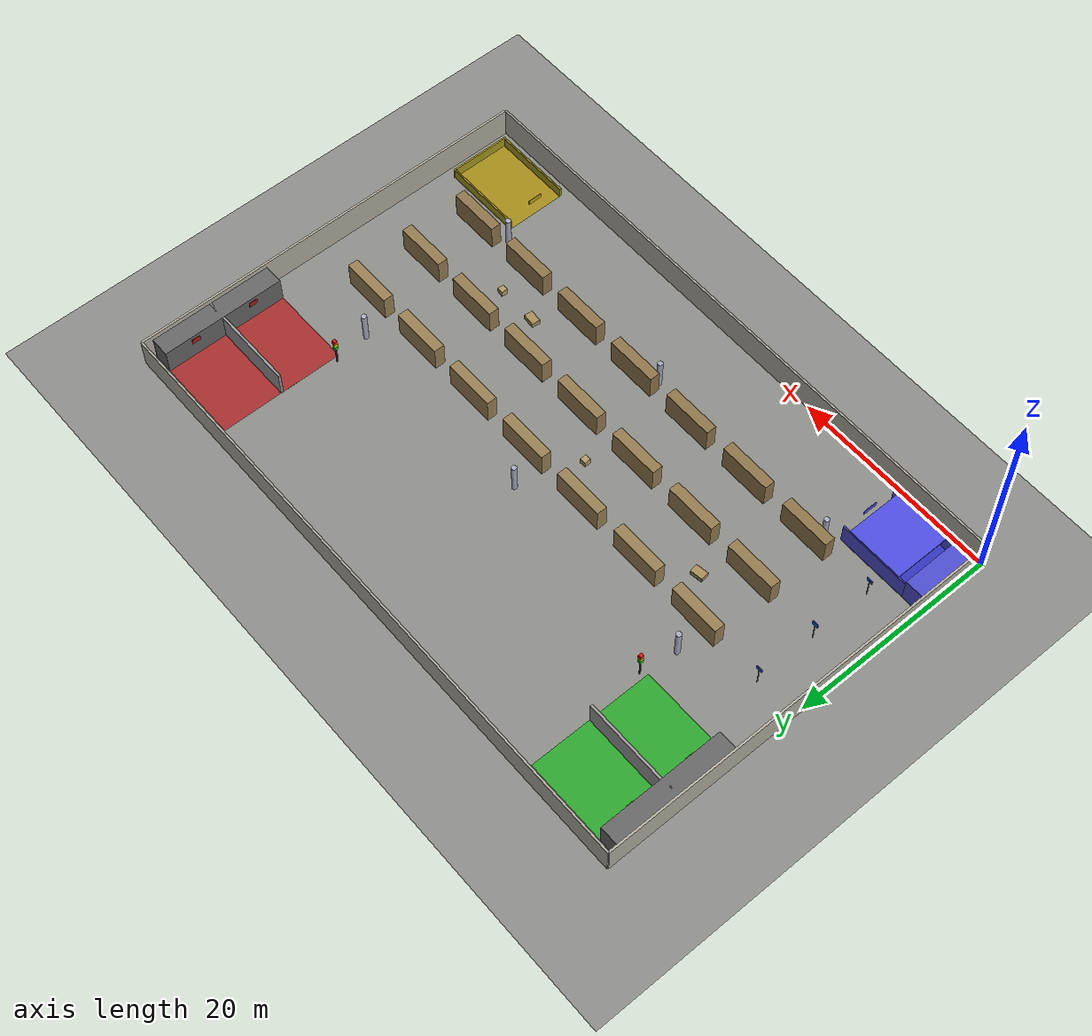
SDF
<sdf version="1.8">
 <world name="warehouse">
  <plugin filename="ignition-gazebo-physics-system" name="ignition::gazebo::systems::Physics"/>
  <plugin filename="ignition-gazebo-sensors-system" name="ignition::gazebo::systems::Sensors">
   <render_engine>ogre2</render_engine>
  </plugin>
  <plugin filename="ignition-gazebo-imu-system" name="ignition::gazebo::systems::Imu"/>
  <plugin filename="ignition-gazebo-user-commands-system" name="ignition::gazebo::systems::UserCommands"/>
  <plugin filename="ignition-gazebo-scene-broadcaster-system" name="ignition::gazebo::systems::SceneBroadcaster"/>
  <physics type="ode">
   <max_step_size>0.004</max_step_size>
   <real_time_factor>1.0</real_time_factor>
   <real_time_update_rate>250</real_time_update_rate>
  </physics>
  <light type="directional" name="sun_main">
   <pose>30 20 15 0 0 0</pose>
   <diffuse>0.9 0.9 0.85 1</diffuse>
   <specular>0.3 0.3 0.3 1</specular>
   <direction>-0.3 -0.2 -1.0</direction>
  </light>
  <light type="directional" name="sun_fill">
   <cast_shadows>false</cast_shadows>
   <pose>30 20 15 0 0 0</pose>
   <diffuse>0.35 0.35 0.4 1</diffuse>
   <specular>0.05 0.05 0.05 1</specular>
   <direction>0.3 0.2 -1.0</direction>
  </light>
  <light type="point" name="ceil_nw">
   <pose>15 32 8 0 0 0</pose>
   <diffuse>0.7 0.7 0.65 1</diffuse>
   <specular>0.1 0.1 0.1 1</specular>
   <attenuation>
    <range>24</range>
    <constant>0.3</constant>
    <linear>0.04</linear>
    <quadratic>0.008</quadratic>
   </attenuation>
   <cast_shadows>false</cast_shadows>
  </light>
  <light type="point" name="ceil_ne">
   <pose>45 32 8 0 0 0</pose>
   <diffuse>0.7 0.7 0.65 1</diffuse>
   <specular>0.1 0.1 0.1 1</specular>
   <attenuation>
    <range>24</range>
    <constant>0.3</constant>
    <linear>0.04</linear>
    <quadratic>0.008</quadratic>
   </attenuation>
   <cast_shadows>false</cast_shadows>
  </light>
  <light type="point" name="ceil_sw">
   <pose>15 12 8 0 0 0</pose>
   <diffuse>0.7 0.7 0.65 1</diffuse>
   <specular>0.1 0.1 0.1 1</specular>
   <attenuation>
    <range>24</range>
    <constant>0.3</constant>
    <linear>0.04</linear>
    <quadratic>0.008</quadratic>
   </attenuation>
   <cast_shadows>false</cast_shadows>
  </light>
  <light type="point" name="ceil_se">
   <pose>45 12 8 0 0 0</pose>
   <diffuse>0.7 0.7 0.65 1</diffuse>
   <specular>0.1 0.1 0.1 1</specular>
   <attenuation>
    <range>24</range>
    <constant>0.3</constant>
    <linear>0.04</linear>
    <quadratic>0.008</quadratic>
   </attenuation>
   <cast_shadows>false</cast_shadows>
  </light>
  <model name="ground_plane">
   <static>true</static>
   <link name="link">
    <collision name="c">
     <geometry><plane><normal>0 0 1</normal><size>80 60</size></plane></geometry>
     <surface>
      <friction>
       <ode><mu>0.6</mu><mu2>0.5</mu2><slip1>0.003</slip1><slip2>0.003</slip2><fdir1>1 0 0</fdir1></ode>
      </friction>
      <contact><ode><kp>1e6</kp><kd>100.0</kd><max_vel>0.1</max_vel><min_depth>0.001</min_depth></ode></contact>
     </surface>
    </collision>
    <visual name="v">
     <geometry><plane><normal>0 0 1</normal><size>80 60</size></plane></geometry>
     <material><ambient>0.55 0.55 0.53 1</ambient><diffuse>0.55 0.55 0.53 1</diffuse></material>
    </visual>
   </link>
  </model>
  <model name="wall_south">
   <static>true</static>
   <pose>30 0 1.5 0 0 0</pose>
   <link name="link">
    <collision name="c"><geometry><box><size>60 0.2 3.0</size></box></geometry></collision>
    <visual name="v">
     <geometry><box><size>60 0.2 3.0</size></box></geometry>
     <material><ambient>0.70 0.68 0.63 1</ambient><diffuse>0.70 0.68 0.63 1</diffuse></material>
    </visual>
   </link>
  </model>
  <model name="wall_north">
   <static>true</static>
   <pose>30 40 1.5 0 0 0</pose>
   <link name="link">
    <collision name="c"><geometry><box><size>60 0.2 3.0</size></box></geometry></collision>
    <visual name="v">
     <geometry><box><size>60 0.2 3.0</size></box></geometry>
     <material><ambient>0.70 0.68 0.63 1</ambient><diffuse>0.70 0.68 0.63 1</diffuse></material>
    </visual>
   </link>
  </model>
  <model name="wall_west">
   <static>true</static>
   <pose>0 20 1.5 0 0 0</pose>
   <link name="link">
    <collision name="c"><geometry><box><size>0.2 40 3.0</size></box></geometry></collision>
    <visual name="v">
     <geometry><box><size>0.2 40 3.0</size></box></geometry>
     <material><ambient>0.70 0.68 0.63 1</ambient><diffuse>0.70 0.68 0.63 1</diffuse></material>
    </visual>
   </link>
  </model>
  <model name="wall_east">
   <static>true</static>
   <pose>60 20 1.5 0 0 0</pose>
   <link name="link">
    <collision name="c"><geometry><box><size>0.2 40 3.0</size></box></geometry></collision>
    <visual name="v">
     <geometry><box><size>0.2 40 3.0</size></box></geometry>
     <material><ambient>0.70 0.68 0.63 1</ambient><diffuse>0.70 0.68 0.63 1</diffuse></material>
    </visual>
   </link>
  </model>
  <model name="col_s1">
   <static>true</static>
   <pose>10 8 1.5 0 0 0</pose>
   <link name="link">
    <collision name="c">
     <geometry><cylinder><radius>0.25</radius><length>3.0</length></cylinder></geometry>
    </collision>
    <visual name="v">
     <geometry><cylinder><radius>0.25</radius><length>3.0</length></cylinder></geometry>
     <material><ambient>0.60 0.62 0.70 1</ambient><diffuse>0.65 0.67 0.75 1</diffuse></material>
    </visual>
   </link>
  </model>
  <model name="col_s2">
   <static>true</static>
   <pose>30 8 1.5 0 0 0</pose>
   <link name="link">
    <collision name="c">
     <geometry><cylinder><radius>0.25</radius><length>3.0</length></cylinder></geometry>
    </collision>
    <visual name="v">
     <geometry><cylinder><radius>0.25</radius><length>3.0</length></cylinder></geometry>
     <material><ambient>0.60 0.62 0.70 1</ambient><diffuse>0.65 0.67 0.75 1</diffuse></material>
    </visual>
   </link>
  </model>
  <model name="col_s3">
   <static>true</static>
   <pose>50 8 1.5 0 0 0</pose>
   <link name="link">
    <collision name="c">
     <geometry><cylinder><radius>0.25</radius><length>3.0</length></cylinder></geometry>
    </collision>
    <visual name="v">
     <geometry><cylinder><radius>0.25</radius><length>3.0</length></cylinder></geometry>
     <material><ambient>0.60 0.62 0.70 1</ambient><diffuse>0.65 0.67 0.75 1</diffuse></material>
    </visual>
   </link>
  </model>
  <model name="col_n1">
   <static>true</static>
   <pose>10 24 1.5 0 0 0</pose>
   <link name="link">
    <collision name="c">
     <geometry><cylinder><radius>0.25</radius><length>3.0</length></cylinder></geometry>
    </collision>
    <visual name="v">
     <geometry><cylinder><radius>0.25</radius><length>3.0</length></cylinder></geometry>
     <material><ambient>0.60 0.62 0.70 1</ambient><diffuse>0.65 0.67 0.75 1</diffuse></material>
    </visual>
   </link>
  </model>
  <model name="col_n2">
   <static>true</static>
   <pose>30 24 1.5 0 0 0</pose>
   <link name="link">
    <collision name="c">
     <geometry><cylinder><radius>0.25</radius><length>3.0</length></cylinder></geometry>
    </collision>
    <visual name="v">
     <geometry><cylinder><radius>0.25</radius><length>3.0</length></cylinder></geometry>
     <material><ambient>0.60 0.62 0.70 1</ambient><diffuse>0.65 0.67 0.75 1</diffuse></material>
    </visual>
   </link>
  </model>
  <model name="col_n3">
   <static>true</static>
   <pose>50 24 1.5 0 0 0</pose>
   <link name="link">
    <collision name="c">
     <geometry><cylinder><radius>0.25</radius><length>3.0</length></cylinder></geometry>
    </collision>
    <visual name="v">
     <geometry><cylinder><radius>0.25</radius><length>3.0</length></cylinder></geometry>
     <material><ambient>0.60 0.62 0.70 1</ambient><diffuse>0.65 0.67 0.75 1</diffuse></material>
    </visual>
   </link>
  </model>
  <model name="loading_floor">
   <static>true</static>
   <pose>5 33 0.002 0 0 0</pose>
   <link name="link">
    <visual name="v">
     <geometry><box><size>10 12 0.002</size></box></geometry>
     <material><ambient>0.15 0.55 0.15 0.9</ambient><diffuse>0.18 0.65 0.18 0.9</diffuse></material>
    </visual>
   </link>
  </model>
  <model name="dock_west_backwall">
   <static>true</static>
   <pose>1.0 33 1.25 0 0 0</pose>
   <link name="link">
    <collision name="c"><geometry><box><size>2.0 12 2.5</size></box></geometry></collision>
    <visual name="v">
     <geometry><box><size>2.0 12 2.5</size></box></geometry>
     <material><ambient>0.35 0.35 0.35 1</ambient><diffuse>0.40 0.40 0.40 1</diffuse></material>
    </visual>
   </link>
  </model>
  <model name="dock_west_divider">
   <static>true</static>
   <pose>5 33 1.25 0 0 0</pose>
   <link name="link">
    <collision name="c"><geometry><box><size>10 0.25 2.5</size></box></geometry></collision>
    <visual name="v">
     <geometry><box><size>10 0.25 2.5</size></box></geometry>
     <material><ambient>0.55 0.55 0.55 1</ambient><diffuse>0.60 0.60 0.60 1</diffuse></material>
    </visual>
   </link>
  </model>
  <model name="sign_dock1">
   <static>true</static>
   <pose>2.1 36 2.0 0 0 0</pose>
   <link name="link">
    <collision name="c"><geometry><box><size>0.06 0.8 0.5</size></box></geometry></collision>
    <visual name="v">
     <geometry><box><size>0.06 0.8 0.5</size></box></geometry>
     <material><ambient>0.1 0.65 0.1 1</ambient><diffuse>0.1 0.75 0.1 1</diffuse></material>
    </visual>
   </link>
  </model>
  <model name="sign_dock2">
   <static>true</static>
   <pose>2.1 30 2.0 0 0 0</pose>
   <link name="link">
    <collision name="c"><geometry><box><size>0.06 0.8 0.5</size></box></geometry></collision>
    <visual name="v">
     <geometry><box><size>0.06 0.8 0.5</size></box></geometry>
     <material><ambient>0.1 0.55 0.1 1</ambient><diffuse>0.1 0.65 0.1 1</diffuse></material>
    </visual>
   </link>
  </model>
  <model name="unloading_floor">
   <static>true</static>
   <pose>55 33 0.002 0 0 0</pose>
   <link name="link">
    <visual name="v">
     <geometry><box><size>10 12 0.002</size></box></geometry>
     <material><ambient>0.55 0.15 0.15 0.9</ambient><diffuse>0.65 0.18 0.18 0.9</diffuse></material>
    </visual>
   </link>
  </model>
  <model name="dock_east_backwall">
   <static>true</static>
   <pose>59.0 33 1.25 0 0 0</pose>
   <link name="link">
    <collision name="c"><geometry><box><size>2.0 12 2.5</size></box></geometry></collision>
    <visual name="v">
     <geometry><box><size>2.0 12 2.5</size></box></geometry>
     <material><ambient>0.35 0.35 0.35 1</ambient><diffuse>0.40 0.40 0.40 1</diffuse></material>
    </visual>
   </link>
  </model>
  <model name="dock_east_divider">
   <static>true</static>
   <pose>55 33 1.25 0 0 0</pose>
   <link name="link">
    <collision name="c"><geometry><box><size>10 0.25 2.5</size></box></geometry></collision>
    <visual name="v">
     <geometry><box><size>10 0.25 2.5</size></box></geometry>
     <material><ambient>0.55 0.55 0.55 1</ambient><diffuse>0.60 0.60 0.60 1</diffuse></material>
    </visual>
   </link>
  </model>
  <model name="sign_dockA">
   <static>true</static>
   <pose>57.9 36 2.0 0 0 0</pose>
   <link name="link">
    <collision name="c"><geometry><box><size>0.06 0.8 0.5</size></box></geometry></collision>
    <visual name="v">
     <geometry><box><size>0.06 0.8 0.5</size></box></geometry>
     <material><ambient>0.65 0.1 0.1 1</ambient><diffuse>0.75 0.1 0.1 1</diffuse></material>
    </visual>
   </link>
  </model>
  <model name="sign_dockB">
   <static>true</static>
   <pose>57.9 30 2.0 0 0 0</pose>
   <link name="link">
    <collision name="c"><geometry><box><size>0.06 0.8 0.5</size></box></geometry></collision>
    <visual name="v">
     <geometry><box><size>0.06 0.8 0.5</size></box></geometry>
     <material><ambient>0.55 0.1 0.1 1</ambient><diffuse>0.65 0.1 0.1 1</diffuse></material>
    </visual>
   </link>
  </model>
  <model name="rack_A1">
   <static>true</static>
   <pose>11 21 1.25 0 0 0</pose>
   <link name="link">
    <collision name="c"><geometry><box><size>5.0 1.0 2.5</size></box></geometry></collision>
    <visual name="v">
     <geometry><box><size>5.0 1.0 2.5</size></box></geometry>
     <material><ambient>0.52 0.42 0.28 1</ambient><diffuse>0.60 0.50 0.33 1</diffuse></material>
    </visual>
   </link>
  </model>
  <model name="rack_A2">
   <static>true</static>
   <pose>18 21 1.25 0 0 0</pose>
   <link name="link">
    <collision name="c"><geometry><box><size>5.0 1.0 2.5</size></box></geometry></collision>
    <visual name="v">
     <geometry><box><size>5.0 1.0 2.5</size></box></geometry>
     <material><ambient>0.52 0.42 0.28 1</ambient><diffuse>0.60 0.50 0.33 1</diffuse></material>
    </visual>
   </link>
  </model>
  <model name="rack_A3">
   <static>true</static>
   <pose>25 21 1.25 0 0 0</pose>
   <link name="link">
    <collision name="c"><geometry><box><size>5.0 1.0 2.5</size></box></geometry></collision>
    <visual name="v">
     <geometry><box><size>5.0 1.0 2.5</size></box></geometry>
     <material><ambient>0.52 0.42 0.28 1</ambient><diffuse>0.60 0.50 0.33 1</diffuse></material>
    </visual>
   </link>
  </model>
  <model name="rack_A4">
   <static>true</static>
   <pose>32 21 1.25 0 0 0</pose>
   <link name="link">
    <collision name="c"><geometry><box><size>5.0 1.0 2.5</size></box></geometry></collision>
    <visual name="v">
     <geometry><box><size>5.0 1.0 2.5</size></box></geometry>
     <material><ambient>0.52 0.42 0.28 1</ambient><diffuse>0.60 0.50 0.33 1</diffuse></material>
    </visual>
   </link>
  </model>
  <model name="rack_A5">
   <static>true</static>
   <pose>39 21 1.25 0 0 0</pose>
   <link name="link">
    <collision name="c"><geometry><box><size>5.0 1.0 2.5</size></box></geometry></collision>
    <visual name="v">
     <geometry><box><size>5.0 1.0 2.5</size></box></geometry>
     <material><ambient>0.52 0.42 0.28 1</ambient><diffuse>0.60 0.50 0.33 1</diffuse></material>
    </visual>
   </link>
  </model>
  <model name="rack_A6">
   <static>true</static>
   <pose>46 21 1.25 0 0 0</pose>
   <link name="link">
    <collision name="c"><geometry><box><size>5.0 1.0 2.5</size></box></geometry></collision>
    <visual name="v">
     <geometry><box><size>5.0 1.0 2.5</size></box></geometry>
     <material><ambient>0.52 0.42 0.28 1</ambient><diffuse>0.60 0.50 0.33 1</diffuse></material>
    </visual>
   </link>
  </model>
  <model name="rack_A7">
   <static>true</static>
   <pose>53 21 1.25 0 0 0</pose>
   <link name="link">
    <collision name="c"><geometry><box><size>5.0 1.0 2.5</size></box></geometry></collision>
    <visual name="v">
     <geometry><box><size>5.0 1.0 2.5</size></box></geometry>
     <material><ambient>0.52 0.42 0.28 1</ambient><diffuse>0.60 0.50 0.33 1</diffuse></material>
    </visual>
   </link>
  </model>
  <model name="rack_B1">
   <static>true</static>
   <pose>11 15 1.25 0 0 0</pose>
   <link name="link">
    <collision name="c"><geometry><box><size>5.0 1.0 2.5</size></box></geometry></collision>
    <visual name="v">
     <geometry><box><size>5.0 1.0 2.5</size></box></geometry>
     <material><ambient>0.50 0.40 0.26 1</ambient><diffuse>0.58 0.48 0.31 1</diffuse></material>
    </visual>
   </link>
  </model>
  <model name="rack_B2">
   <static>true</static>
   <pose>18 15 1.25 0 0 0</pose>
   <link name="link">
    <collision name="c"><geometry><box><size>5.0 1.0 2.5</size></box></geometry></collision>
    <visual name="v">
     <geometry><box><size>5.0 1.0 2.5</size></box></geometry>
     <material><ambient>0.50 0.40 0.26 1</ambient><diffuse>0.58 0.48 0.31 1</diffuse></material>
    </visual>
   </link>
  </model>
  <model name="rack_B3">
   <static>true</static>
   <pose>25 15 1.25 0 0 0</pose>
   <link name="link">
    <collision name="c"><geometry><box><size>5.0 1.0 2.5</size></box></geometry></collision>
    <visual name="v">
     <geometry><box><size>5.0 1.0 2.5</size></box></geometry>
     <material><ambient>0.50 0.40 0.26 1</ambient><diffuse>0.58 0.48 0.31 1</diffuse></material>
    </visual>
   </link>
  </model>
  <model name="rack_B4">
   <static>true</static>
   <pose>32 15 1.25 0 0 0</pose>
   <link name="link">
    <collision name="c"><geometry><box><size>5.0 1.0 2.5</size></box></geometry></collision>
    <visual name="v">
     <geometry><box><size>5.0 1.0 2.5</size></box></geometry>
     <material><ambient>0.50 0.40 0.26 1</ambient><diffuse>0.58 0.48 0.31 1</diffuse></material>
    </visual>
   </link>
  </model>
  <model name="rack_B5">
   <static>true</static>
   <pose>39 15 1.25 0 0 0</pose>
   <link name="link">
    <collision name="c"><geometry><box><size>5.0 1.0 2.5</size></box></geometry></collision>
    <visual name="v">
     <geometry><box><size>5.0 1.0 2.5</size></box></geometry>
     <material><ambient>0.50 0.40 0.26 1</ambient><diffuse>0.58 0.48 0.31 1</diffuse></material>
    </visual>
   </link>
  </model>
  <model name="rack_B6">
   <static>true</static>
   <pose>46 15 1.25 0 0 0</pose>
   <link name="link">
    <collision name="c"><geometry><box><size>5.0 1.0 2.5</size></box></geometry></collision>
    <visual name="v">
     <geometry><box><size>5.0 1.0 2.5</size></box></geometry>
     <material><ambient>0.50 0.40 0.26 1</ambient><diffuse>0.58 0.48 0.31 1</diffuse></material>
    </visual>
   </link>
  </model>
  <model name="rack_B7">
   <static>true</static>
   <pose>53 15 1.25 0 0 0</pose>
   <link name="link">
    <collision name="c"><geometry><box><size>5.0 1.0 2.5</size></box></geometry></collision>
    <visual name="v">
     <geometry><box><size>5.0 1.0 2.5</size></box></geometry>
     <material><ambient>0.50 0.40 0.26 1</ambient><diffuse>0.58 0.48 0.31 1</diffuse></material>
    </visual>
   </link>
  </model>
  <model name="rack_C1">
   <static>true</static>
   <pose>11 9 1.25 0 0 0</pose>
   <link name="link">
    <collision name="c"><geometry><box><size>5.0 1.0 2.5</size></box></geometry></collision>
    <visual name="v">
     <geometry><box><size>5.0 1.0 2.5</size></box></geometry>
     <material><ambient>0.48 0.38 0.24 1</ambient><diffuse>0.56 0.46 0.29 1</diffuse></material>
    </visual>
   </link>
  </model>
  <model name="rack_C2">
   <static>true</static>
   <pose>18 9 1.25 0 0 0</pose>
   <link name="link">
    <collision name="c"><geometry><box><size>5.0 1.0 2.5</size></box></geometry></collision>
    <visual name="v">
     <geometry><box><size>5.0 1.0 2.5</size></box></geometry>
     <material><ambient>0.48 0.38 0.24 1</ambient><diffuse>0.56 0.46 0.29 1</diffuse></material>
    </visual>
   </link>
  </model>
  <model name="rack_C3">
   <static>true</static>
   <pose>25 9 1.25 0 0 0</pose>
   <link name="link">
    <collision name="c"><geometry><box><size>5.0 1.0 2.5</size></box></geometry></collision>
    <visual name="v">
     <geometry><box><size>5.0 1.0 2.5</size></box></geometry>
     <material><ambient>0.48 0.38 0.24 1</ambient><diffuse>0.56 0.46 0.29 1</diffuse></material>
    </visual>
   </link>
  </model>
  <model name="rack_C4">
   <static>true</static>
   <pose>32 9 1.25 0 0 0</pose>
   <link name="link">
    <collision name="c"><geometry><box><size>5.0 1.0 2.5</size></box></geometry></collision>
    <visual name="v">
     <geometry><box><size>5.0 1.0 2.5</size></box></geometry>
     <material><ambient>0.48 0.38 0.24 1</ambient><diffuse>0.56 0.46 0.29 1</diffuse></material>
    </visual>
   </link>
  </model>
  <model name="rack_C5">
   <static>true</static>
   <pose>39 9 1.25 0 0 0</pose>
   <link name="link">
    <collision name="c"><geometry><box><size>5.0 1.0 2.5</size></box></geometry></collision>
    <visual name="v">
     <geometry><box><size>5.0 1.0 2.5</size></box></geometry>
     <material><ambient>0.48 0.38 0.24 1</ambient><diffuse>0.56 0.46 0.29 1</diffuse></material>
    </visual>
   </link>
  </model>
  <model name="rack_C6">
   <static>true</static>
   <pose>46 9 1.25 0 0 0</pose>
   <link name="link">
    <collision name="c"><geometry><box><size>5.0 1.0 2.5</size></box></geometry></collision>
    <visual name="v">
     <geometry><box><size>5.0 1.0 2.5</size></box></geometry>
     <material><ambient>0.48 0.38 0.24 1</ambient><diffuse>0.56 0.46 0.29 1</diffuse></material>
    </visual>
   </link>
  </model>
  <model name="rack_C7">
   <static>true</static>
   <pose>53 9 1.25 0 0 0</pose>
   <link name="link">
    <collision name="c"><geometry><box><size>5.0 1.0 2.5</size></box></geometry></collision>
    <visual name="v">
     <geometry><box><size>5.0 1.0 2.5</size></box></geometry>
     <material><ambient>0.48 0.38 0.24 1</ambient><diffuse>0.56 0.46 0.29 1</diffuse></material>
    </visual>
   </link>
  </model>
  <model name="charging_floor">
   <static>true</static>
   <pose>5 4 0.002 0 0 0</pose>
   <link name="link">
    <visual name="v">
     <geometry><box><size>8 6 0.002</size></box></geometry>
     <material><ambient>0.18 0.18 0.65 0.9</ambient><diffuse>0.20 0.20 0.75 0.9</diffuse></material>
    </visual>
   </link>
  </model>
  <model name="charging_backwall">
   <static>true</static>
   <pose>1.0 4 1.25 0 0 0</pose>
   <link name="link">
    <collision name="c"><geometry><box><size>2.0 6 2.5</size></box></geometry></collision>
    <visual name="v">
     <geometry><box><size>2.0 6 2.5</size></box></geometry>
     <material><ambient>0.25 0.25 0.72 1</ambient><diffuse>0.30 0.30 0.82 1</diffuse></material>
    </visual>
   </link>
  </model>
  <model name="charging_wall_s">
   <static>true</static>
   <pose>5 1.1 1.0 0 0 0</pose>
   <link name="link">
    <collision name="c"><geometry><box><size>8 0.15 2.0</size></box></geometry></collision>
    <visual name="v">
     <geometry><box><size>8 0.15 2.0</size></box></geometry>
     <material><ambient>0.25 0.25 0.72 1</ambient><diffuse>0.30 0.30 0.82 1</diffuse></material>
    </visual>
   </link>
  </model>
  <model name="charging_wall_n">
   <static>true</static>
   <pose>5 6.9 1.0 0 0 0</pose>
   <link name="link">
    <collision name="c"><geometry><box><size>8 0.15 2.0</size></box></geometry></collision>
    <visual name="v">
     <geometry><box><size>8 0.15 2.0</size></box></geometry>
     <material><ambient>0.25 0.25 0.72 1</ambient><diffuse>0.30 0.30 0.82 1</diffuse></material>
    </visual>
   </link>
  </model>
  <model name="charging_col_c1">
   <static>true</static>
   <pose>3.5 2 1.1 0 0 0</pose>
   <link name="link">
    <collision name="c">
     <geometry><cylinder><radius>0.09</radius><length>2.2</length></cylinder></geometry>
    </collision>
    <visual name="v">
     <geometry><cylinder><radius>0.09</radius><length>2.2</length></cylinder></geometry>
     <material><ambient>0.3 0.3 0.85 1</ambient><diffuse>0.35 0.35 0.95 1</diffuse></material>
    </visual>
   </link>
  </model>
  <model name="charging_col_c2">
   <static>true</static>
   <pose>3.5 4 1.1 0 0 0</pose>
   <link name="link">
    <collision name="c">
     <geometry><cylinder><radius>0.09</radius><length>2.2</length></cylinder></geometry>
    </collision>
    <visual name="v">
     <geometry><cylinder><radius>0.09</radius><length>2.2</length></cylinder></geometry>
     <material><ambient>0.3 0.3 0.85 1</ambient><diffuse>0.35 0.35 0.95 1</diffuse></material>
    </visual>
   </link>
  </model>
  <model name="charging_col_c3">
   <static>true</static>
   <pose>3.5 6 1.1 0 0 0</pose>
   <link name="link">
    <collision name="c">
     <geometry><cylinder><radius>0.09</radius><length>2.2</length></cylinder></geometry>
    </collision>
    <visual name="v">
     <geometry><cylinder><radius>0.09</radius><length>2.2</length></cylinder></geometry>
     <material><ambient>0.3 0.3 0.85 1</ambient><diffuse>0.35 0.35 0.95 1</diffuse></material>
    </visual>
   </link>
  </model>
  <model name="charging_canopy">
   <static>true</static>
   <pose>5.5 4 2.22 0 0 0</pose>
   <link name="link">
    <collision name="c"><geometry><box><size>5.5 6 0.12</size></box></geometry></collision>
    <visual name="v">
     <geometry><box><size>5.5 6 0.12</size></box></geometry>
     <material><ambient>0.25 0.25 0.78 1</ambient><diffuse>0.30 0.30 0.88 1</diffuse></material>
    </visual>
   </link>
  </model>
  <model name="charger_C1">
   <static>true</static>
   <pose>5.5 2 0.6 0 0 0</pose>
   <link name="link">
    <collision name="c"><geometry><box><size>0.35 0.35 1.2</size></box></geometry></collision>
    <visual name="v">
     <geometry><box><size>0.35 0.35 1.2</size></box></geometry>
     <material><ambient>0.28 0.28 0.95 1</ambient><diffuse>0.30 0.30 1.0 1</diffuse></material>
    </visual>
   </link>
  </model>
  <model name="charger_C2">
   <static>true</static>
   <pose>5.5 4 0.6 0 0 0</pose>
   <link name="link">
    <collision name="c"><geometry><box><size>0.35 0.35 1.2</size></box></geometry></collision>
    <visual name="v">
     <geometry><box><size>0.35 0.35 1.2</size></box></geometry>
     <material><ambient>0.28 0.28 0.95 1</ambient><diffuse>0.30 0.30 1.0 1</diffuse></material>
    </visual>
   </link>
  </model>
  <model name="charger_C3">
   <static>true</static>
   <pose>5.5 6 0.6 0 0 0</pose>
   <link name="link">
    <collision name="c"><geometry><box><size>0.35 0.35 1.2</size></box></geometry></collision>
    <visual name="v">
     <geometry><box><size>0.35 0.35 1.2</size></box></geometry>
     <material><ambient>0.28 0.28 0.95 1</ambient><diffuse>0.30 0.30 1.0 1</diffuse></material>
    </visual>
   </link>
  </model>
  <model name="sign_charging">
   <static>true</static>
   <pose>8.9 4 1.8 0 0 0</pose>
   <link name="link">
    <collision name="c"><geometry><box><size>0.06 1.4 0.45</size></box></geometry></collision>
    <visual name="v">
     <geometry><box><size>0.06 1.4 0.45</size></box></geometry>
     <material><ambient>0.28 0.28 0.92 1</ambient><diffuse>0.30 0.30 1.0 1</diffuse></material>
    </visual>
   </link>
  </model>
  <model name="waiting_floor">
   <static>true</static>
   <pose>55 4 0.002 0 0 0</pose>
   <link name="link">
    <visual name="v">
     <geometry><box><size>8 6 0.002</size></box></geometry>
     <material><ambient>0.55 0.45 0.08 0.9</ambient><diffuse>0.65 0.55 0.10 0.9</diffuse></material>
    </visual>
   </link>
  </model>
  <model name="waiting_fence_e">
   <static>true</static>
   <pose>58.9 4 0.5 0 0 0</pose>
   <link name="link">
    <collision name="c"><geometry><box><size>0.15 6 1.0</size></box></geometry></collision>
    <visual name="v">
     <geometry><box><size>0.15 6 1.0</size></box></geometry>
     <material><ambient>0.55 0.50 0.10 1</ambient><diffuse>0.65 0.60 0.12 1</diffuse></material>
    </visual>
   </link>
  </model>
  <model name="waiting_fence_s">
   <static>true</static>
   <pose>55 1.1 0.5 0 0 0</pose>
   <link name="link">
    <collision name="c"><geometry><box><size>8 0.15 1.0</size></box></geometry></collision>
    <visual name="v">
     <geometry><box><size>8 0.15 1.0</size></box></geometry>
     <material><ambient>0.55 0.50 0.10 1</ambient><diffuse>0.65 0.60 0.12 1</diffuse></material>
    </visual>
   </link>
  </model>
  <model name="waiting_fence_n">
   <static>true</static>
   <pose>55 6.9 0.5 0 0 0</pose>
   <link name="link">
    <collision name="c"><geometry><box><size>8 0.15 1.0</size></box></geometry></collision>
    <visual name="v">
     <geometry><box><size>8 0.15 1.0</size></box></geometry>
     <material><ambient>0.55 0.50 0.10 1</ambient><diffuse>0.65 0.60 0.12 1</diffuse></material>
    </visual>
   </link>
  </model>
  <model name="sign_waiting">
   <static>true</static>
   <pose>51.1 4 1.8 0 0 0</pose>
   <link name="link">
    <collision name="c"><geometry><box><size>0.06 1.4 0.45</size></box></geometry></collision>
    <visual name="v">
     <geometry><box><size>0.06 1.4 0.45</size></box></geometry>
     <material><ambient>0.65 0.55 0.10 1</ambient><diffuse>0.75 0.65 0.12 1</diffuse></material>
    </visual>
   </link>
  </model>
  <model name="tl_w_pole">
   <static>true</static>
   <pose>10.5 27.5 1.4 0 0 0</pose>
   <link name="link">
    <collision name="c">
     <geometry><cylinder><radius>0.07</radius><length>2.8</length></cylinder></geometry>
    </collision>
    <visual name="v">
     <geometry><cylinder><radius>0.07</radius><length>2.8</length></cylinder></geometry>
     <material><ambient>0.22 0.22 0.22 1</ambient><diffuse>0.28 0.28 0.28 1</diffuse></material>
    </visual>
   </link>
  </model>
  <model name="tl_w_red">
   <static>true</static>
   <pose>10.5 27.5 2.9 0 0 0</pose>
   <link name="link">
    <collision name="c"><geometry><box><size>0.32 0.32 0.32</size></box></geometry></collision>
    <visual name="v">
     <geometry><box><size>0.32 0.32 0.32</size></box></geometry>
     <material><ambient>0.9 0.08 0.08 1</ambient><diffuse>1.0 0.08 0.08 1</diffuse></material>
    </visual>
   </link>
  </model>
  <model name="tl_w_yellow">
   <static>true</static>
   <pose>10.5 27.5 2.5 0 0 0</pose>
   <link name="link">
    <collision name="c"><geometry><box><size>0.32 0.32 0.32</size></box></geometry></collision>
    <visual name="v">
     <geometry><box><size>0.32 0.32 0.32</size></box></geometry>
     <material><ambient>0.9 0.75 0.0 1</ambient><diffuse>1.0 0.85 0.0 1</diffuse></material>
    </visual>
   </link>
  </model>
  <model name="tl_w_green">
   <static>true</static>
   <pose>10.5 27.5 2.1 0 0 0</pose>
   <link name="link">
    <collision name="c"><geometry><box><size>0.32 0.32 0.32</size></box></geometry></collision>
    <visual name="v">
     <geometry><box><size>0.32 0.32 0.32</size></box></geometry>
     <material><ambient>0.1 0.8 0.1 1</ambient><diffuse>0.1 0.9 0.1 1</diffuse></material>
    </visual>
   </link>
  </model>
  <model name="tl_e_pole">
   <static>true</static>
   <pose>49.5 27.5 1.4 0 0 0</pose>
   <link name="link">
    <collision name="c">
     <geometry><cylinder><radius>0.07</radius><length>2.8</length></cylinder></geometry>
    </collision>
    <visual name="v">
     <geometry><cylinder><radius>0.07</radius><length>2.8</length></cylinder></geometry>
     <material><ambient>0.22 0.22 0.22 1</ambient><diffuse>0.28 0.28 0.28 1</diffuse></material>
    </visual>
   </link>
  </model>
  <model name="tl_e_red">
   <static>true</static>
   <pose>49.5 27.5 2.9 0 0 0</pose>
   <link name="link">
    <collision name="c"><geometry><box><size>0.32 0.32 0.32</size></box></geometry></collision>
    <visual name="v">
     <geometry><box><size>0.32 0.32 0.32</size></box></geometry>
     <material><ambient>0.9 0.08 0.08 1</ambient><diffuse>1.0 0.08 0.08 1</diffuse></material>
    </visual>
   </link>
  </model>
  <model name="tl_e_yellow">
   <static>true</static>
   <pose>49.5 27.5 2.5 0 0 0</pose>
   <link name="link">
    <collision name="c"><geometry><box><size>0.32 0.32 0.32</size></box></geometry></collision>
    <visual name="v">
     <geometry><box><size>0.32 0.32 0.32</size></box></geometry>
     <material><ambient>0.9 0.75 0.0 1</ambient><diffuse>1.0 0.85 0.0 1</diffuse></material>
    </visual>
   </link>
  </model>
  <model name="tl_e_green">
   <static>true</static>
   <pose>49.5 27.5 2.1 0 0 0</pose>
   <link name="link">
    <collision name="c"><geometry><box><size>0.32 0.32 0.32</size></box></geometry></collision>
    <visual name="v">
     <geometry><box><size>0.32 0.32 0.32</size></box></geometry>
     <material><ambient>0.1 0.8 0.1 1</ambient><diffuse>0.1 0.9 0.1 1</diffuse></material>
    </visual>
   </link>
  </model>
  <model name="sign_rowA_pole">
   <static>true</static>
   <pose>4 21 1.1 0 0 0</pose>
   <link name="link">
    <collision name="c">
     <geometry><cylinder><radius>0.04</radius><length>2.2</length></cylinder></geometry>
    </collision>
    <visual name="v">
     <geometry><cylinder><radius>0.04</radius><length>2.2</length></cylinder></geometry>
     <material><ambient>0.3 0.3 0.3 1</ambient><diffuse>0.35 0.35 0.35 1</diffuse></material>
    </visual>
   </link>
  </model>
  <model name="sign_rowA_board">
   <static>true</static>
   <pose>4 21 2.25 0 0 0</pose>
   <link name="link">
    <collision name="c"><geometry><box><size>0.60 0.06 0.38</size></box></geometry></collision>
    <visual name="v">
     <geometry><box><size>0.60 0.06 0.38</size></box></geometry>
     <material><ambient>0.10 0.30 0.82 1</ambient><diffuse>0.12 0.35 0.92 1</diffuse></material>
    </visual>
   </link>
  </model>
  <model name="sign_rowB_pole">
   <static>true</static>
   <pose>4 15 1.1 0 0 0</pose>
   <link name="link">
    <collision name="c">
     <geometry><cylinder><radius>0.04</radius><length>2.2</length></cylinder></geometry>
    </collision>
    <visual name="v">
     <geometry><cylinder><radius>0.04</radius><length>2.2</length></cylinder></geometry>
     <material><ambient>0.3 0.3 0.3 1</ambient><diffuse>0.35 0.35 0.35 1</diffuse></material>
    </visual>
   </link>
  </model>
  <model name="sign_rowB_board">
   <static>true</static>
   <pose>4 15 2.25 0 0 0</pose>
   <link name="link">
    <collision name="c"><geometry><box><size>0.60 0.06 0.38</size></box></geometry></collision>
    <visual name="v">
     <geometry><box><size>0.60 0.06 0.38</size></box></geometry>
     <material><ambient>0.10 0.30 0.82 1</ambient><diffuse>0.12 0.35 0.92 1</diffuse></material>
    </visual>
   </link>
  </model>
  <model name="sign_rowC_pole">
   <static>true</static>
   <pose>4 9 1.1 0 0 0</pose>
   <link name="link">
    <collision name="c">
     <geometry><cylinder><radius>0.04</radius><length>2.2</length></cylinder></geometry>
    </collision>
    <visual name="v">
     <geometry><cylinder><radius>0.04</radius><length>2.2</length></cylinder></geometry>
     <material><ambient>0.3 0.3 0.3 1</ambient><diffuse>0.35 0.35 0.35 1</diffuse></material>
    </visual>
   </link>
  </model>
  <model name="sign_rowC_board">
   <static>true</static>
   <pose>4 9 2.25 0 0 0</pose>
   <link name="link">
    <collision name="c"><geometry><box><size>0.60 0.06 0.38</size></box></geometry></collision>
    <visual name="v">
     <geometry><box><size>0.60 0.06 0.38</size></box></geometry>
     <material><ambient>0.10 0.30 0.82 1</ambient><diffuse>0.12 0.35 0.92 1</diffuse></material>
    </visual>
   </link>
  </model>
  <model name="pallet_1">
   <static>true</static>
   <pose>14 18 0.25 0 0 0.15</pose>
   <link name="link">
    <collision name="c"><geometry><box><size>1.2 0.8 0.5</size></box></geometry></collision>
    <visual name="v">
     <geometry><box><size>1.2 0.8 0.5</size></box></geometry>
     <material><ambient>0.60 0.50 0.30 1</ambient><diffuse>0.65 0.55 0.35 1</diffuse></material>
    </visual>
   </link>
  </model>
  <model name="pallet_2">
   <static>true</static>
   <pose>42 12 0.25 0 0 -0.10</pose>
   <link name="link">
    <collision name="c"><geometry><box><size>1.2 0.8 0.5</size></box></geometry></collision>
    <visual name="v">
     <geometry><box><size>1.2 0.8 0.5</size></box></geometry>
     <material><ambient>0.60 0.50 0.30 1</ambient><diffuse>0.65 0.55 0.35 1</diffuse></material>
    </visual>
   </link>
  </model>
  <model name="box_stack_1">
   <static>true</static>
   <pose>28 18 0.30 0 0 0.05</pose>
   <link name="link">
    <collision name="c"><geometry><box><size>0.6 0.6 0.6</size></box></geometry></collision>
    <visual name="v">
     <geometry><box><size>0.6 0.6 0.6</size></box></geometry>
     <material><ambient>0.65 0.55 0.35 1</ambient><diffuse>0.70 0.60 0.40 1</diffuse></material>
    </visual>
   </link>
  </model>
  <model name="box_stack_2">
   <static>true</static>
   <pose>46 12 0.30 0 0 -0.08</pose>
   <link name="link">
    <collision name="c"><geometry><box><size>0.6 0.6 0.6</size></box></geometry></collision>
    <visual name="v">
     <geometry><box><size>0.6 0.6 0.6</size></box></geometry>
     <material><ambient>0.65 0.55 0.35 1</ambient><diffuse>0.70 0.60 0.40 1</diffuse></material>
    </visual>
   </link>
  </model>
 </world>
</sdf>
